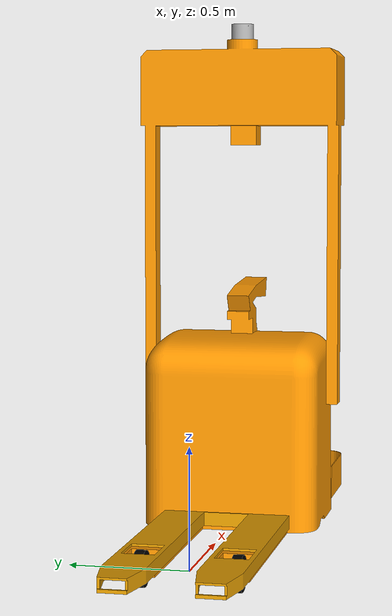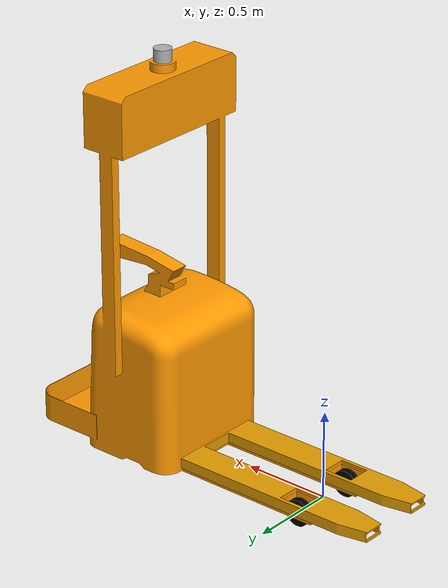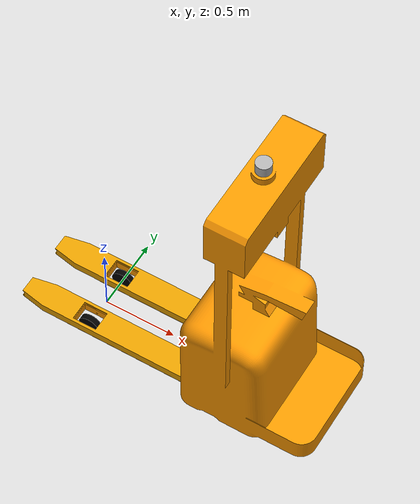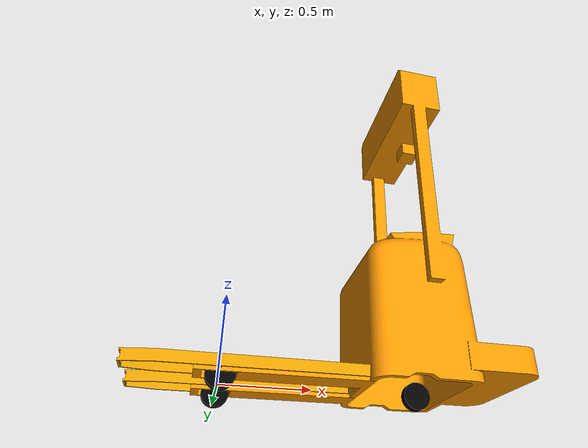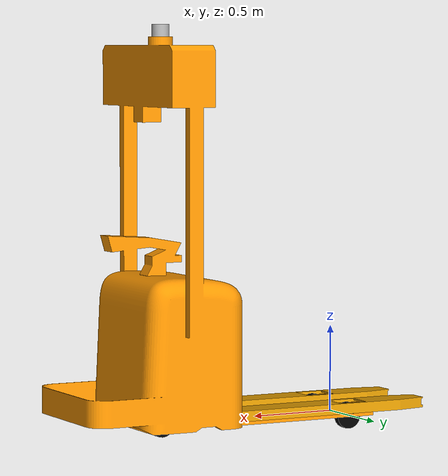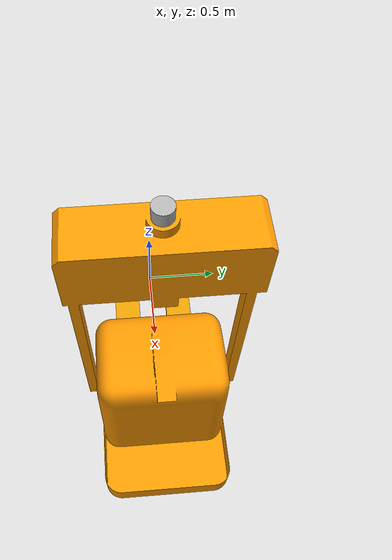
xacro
<?xml version="1.0"?>
<robot name="warehouse_bot" xmlns:xacro="http://ros.org/wiki/xacro">

    <material name="Black">
      <color rgba="0 0 0 1" />
    </material>
    <material name="Grey">
      <color rgba="0.8 0.8 0.8 1" />
    </material>
    <material name="Orange">
      <color rgba="1 0.6 0 1" />
    </material>
    <material name="White">
      <color rgba="1 1 1 1" />
    </material>

    <link name="base_link">
    </link>

    <link name="base_footprint">
    </link>

    <joint name="base_footprint_joint" type="fixed">
      <parent link="base_link"/>
      <child link="base_footprint"/>
      <origin xyz="0 0 0" rpy="0 0 0"/>
    </joint>

    <!-- Chassis -->
    <link name="chassis">
      <visual>
        <origin xyz="0 0 -0.02" rpy="0 0 0"/>
        <geometry>
          <mesh filename="file://$(find warehouse_bot)/meshes/chassis.stl" scale="0.001 0.001 0.001"/>
        </geometry>
        <material name="Orange"/>
      </visual>
      <collision>
        <origin xyz="0 0 -0.02" rpy="0 0 0"/>
        <geometry>
          <mesh filename="file://$(find warehouse_bot)/meshes/chassis.stl" scale="0.001 0.001 0.001"/>
        </geometry>
      </collision>
      <inertial>
        <origin xyz="0 0 0" rpy="0 0 0" />
        <mass value="70" />
        <inertia ixx="0.126164" ixy="0.0" ixz="0.0" iyy="0.416519" iyz="0.0" izz="0.481014" />
      </inertial>
    </link>

    <joint name="chassis_joint" type="fixed">
      <origin xyz="0 0 0" rpy="0 0 0" />
      <parent link="base_link" />
      <child link="chassis" />
    </joint>

    <!-- left wheel Link -->
    <link name="left_wheel">
      <collision>
        <geometry>
          <cylinder length="0.04" radius="0.075" />
        </geometry>
      </collision>
      <visual>
        <geometry>
          <cylinder length="0.04" radius="0.075" />
        </geometry>
        <material name="Black" />
      </visual>
      <inertial>
        <mass value="50" />
        <inertia ixx="0.145833" ixy="0.0" ixz="0.0" iyy="0.145833" iyz="0.0" izz="0.125" />
      </inertial>
    </link>

    <joint name="left_wheel_joint" type="continuous">
      <origin xyz="0 0.2 0" rpy="-1.57 0 0" />
      <parent link="chassis" />
      <child link="left_wheel" />
      <axis xyz="0 0 1" />
      <dynamics damping="0.2" />
    </joint>

    <!-- right wheel Link -->
    <link name="right_wheel">
      <collision>
        <geometry>
          <cylinder length="0.04" radius="0.075" />
        </geometry>
      </collision>
      <visual>
        <geometry>
          <cylinder length="0.04" radius="0.075" />
        </geometry>
        <material name="Black" />
      </visual>

      <inertial>
        <mass value="50" />
        <inertia ixx="0.145833" ixy="0.0" ixz="0.0" iyy="0.145833" iyz="0.0" izz="0.125" />
      </inertial>
    </link>

    <joint name="right_wheel_joint" type="continuous">
      <origin xyz="0 -0.2 0" rpy="-1.57 0 0" />
      <parent link="chassis" />
      <child link="right_wheel" />
      <axis xyz="0 0 1" />
      <dynamics damping="0.2" />
    </joint>

    <!-- Steering Link -->
    <link name="steering_link">
      <visual>
        <geometry>
          <box size="0.01 0.01 0.01" />
        </geometry>
        <material name="Black" />
      </visual>
      <inertial>
        <origin xyz="0 0 0" rpy="0 0 0" />
        <mass value="1" />
        <inertia ixx="0.1" ixy="0.0" ixz="0.0" iyy="0.1" iyz="0.0" izz="0.1" />
      </inertial>
    </link>

    <joint name="steering_joint" type="continuous">
      <origin xyz="1.1 0 0" rpy="0 0 0" />
      <parent link="chassis" />
      <child link="steering_link" />
      <axis xyz="0 0 1" />
    </joint>

    <!-- traction wheel link -->
    <link name="wheel_front_link">
      <visual>
        <geometry>
          <cylinder length="0.05" radius="0.075" />
        </geometry>
        <material name="Black" />
      </visual>
      <inertial>
        <origin xyz="0 0 0" rpy="0 0 0" />
        <mass value="100" />
        <inertia ixx="1" ixy="0" ixz="0" iyy="1" iyz="0" izz="1" />
      </inertial>
      <collision>
        <geometry>
          <cylinder length="0.05" radius="0.075" />
        </geometry>
      </collision>
    </link>

    <joint name="traction_joint" type="continuous">
      <parent link="steering_link" />
      <child link="wheel_front_link" />
      <origin xyz="0 0 0" rpy="-1.57 1.57 0" />
      <axis xyz="0 0 1" />
    </joint>

  <link name="line_lidar_1">
    <inertial>
      <origin xyz="0 0 0" rpy="0 0 0"/>
      <mass value="1"/>
      <inertia ixx="0.00068" iyy="0.00068" izz="0.000389" ixy="0.0" iyz="-0.0" ixz="-0.0"/>
    </inertial>
    <visual>
      <origin xyz="-1.1 0.0 -2.3" rpy="0 0 0"/>
      <geometry>
        <mesh filename="file://$(find warehouse_bot)/meshes/16line_lidar_1.stl" scale="0.001 0.001 0.001"/>
      </geometry>
    </visual>
    <collision>
      <origin xyz="-1.1 0.0 -2.3" rpy="0 0 0"/>
      <geometry>
        <mesh filename="file://$(find warehouse_bot)/meshes/16line_lidar_1.stl" scale="0.001 0.001 0.001"/>
      </geometry>
    </collision>
  </link>

  <link name="fork_1">
    <inertial>
      <origin xyz="0 0 0" rpy="0 0 0"/>
      <mass value="10"/>
      <inertia ixx="0.1" ixy="0.0" ixz="0.0" iyy="0.1" iyz="0.0" izz="0.155" />
    </inertial>
    <visual>
      <origin xyz="0.0 0.0 -0.03" rpy="0 0 0"/>
      <geometry>
        <mesh filename="file://$(find warehouse_bot)/meshes/fork_1.stl" scale="0.001 0.001 0.001"/>
      </geometry>
    </visual>
    <collision>
      <origin xyz="0.0 0 -0.03" rpy="0 0 0"/>
      <geometry>
        <mesh filename="file://$(find warehouse_bot)/meshes/fork_1.stl" scale="0.001 0.001 0.001"/>
      </geometry>
    </collision>
  </link>

  <joint name="fork_joint" type="fixed">
    <origin xyz="0.0 0.0 0.022893" rpy="0 0 0"/>
    <parent link="base_link"/>
    <child link="fork_1"/>
  </joint>

  <joint name="16line_lidar_joint" type="fixed">
    <origin xyz="1.1 0.0 2.25" rpy="0 0 0"/>
    <parent link="chassis"/>
    <child link="line_lidar_1"/>
  </joint>

</robot>
